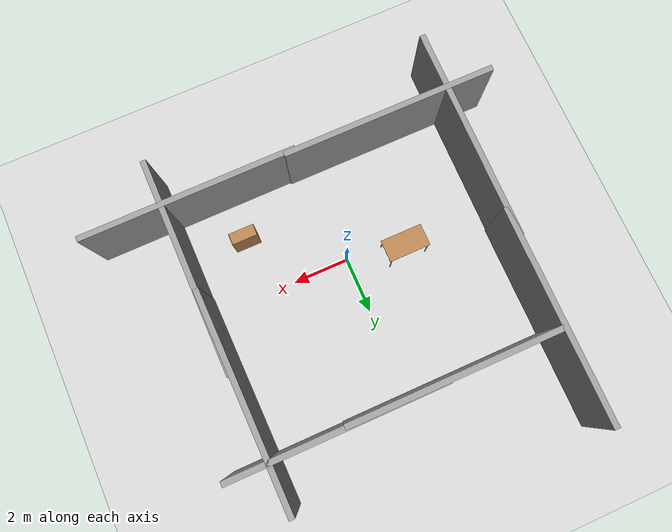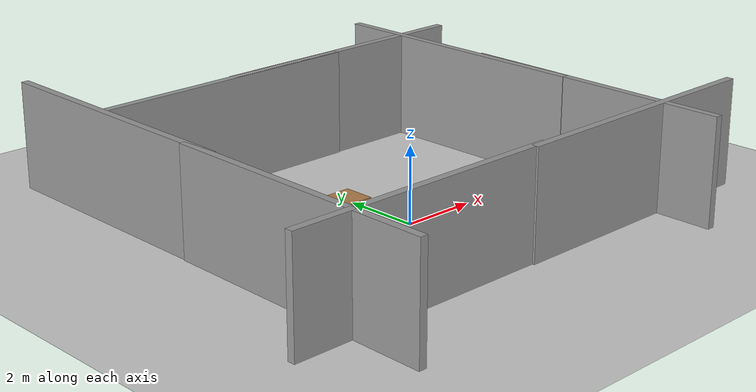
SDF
<sdf version="1.4">
 <world name="default">
  <light name="sun" type="directional">
   <pose>0 0 10 0 -0 0</pose>
   <diffuse>0.8 0.8 0.8 1</diffuse>
   <specular>0.2 0.2 0.2 1</specular>
   <attenuation>
    <range>1000</range>
    <constant>0.9</constant>
    <linear>0.01</linear>
    <quadratic>0.001</quadratic>
   </attenuation>
   <direction>-0.5 0.1 -0.9</direction>
  </light>
  <model name="ground_plane">
   <static>1</static>
   <link name="link">
    <collision name="collision">
     <geometry><plane><normal>0 0 1</normal><size>100 100</size></plane></geometry>
     <surface><friction><ode><mu>100</mu><mu2>50</mu2></ode></friction></surface>
    </collision>
    <visual name="visual">
     <cast_shadows>0</cast_shadows>
     <geometry><plane><normal>0 0 1</normal><size>100 100</size></plane></geometry>
     <material>
      <script><uri>file://media/materials/scripts/gazebo.material</uri><name>Gazebo/Grey</name></script>
     </material>
    </visual>
    <velocity_decay><linear>0</linear><angular>0</angular></velocity_decay>
   </link>
  </model>
  <physics type="ode">
   <max_step_size>0.001</max_step_size>
   <real_time_factor>1</real_time_factor>
   <real_time_update_rate>1000</real_time_update_rate>
   <gravity>0 0 -9.8</gravity>
  </physics>
  <scene><ambient>0.4 0.4 0.4 1</ambient><background>0.7 0.7 0.7 1</background><shadows>1</shadows></scene>
  <spherical_coordinates>
   <surface_model>EARTH_WGS84</surface_model>
   <latitude_deg>0</latitude_deg>
   <longitude_deg>0</longitude_deg>
   <elevation>0</elevation>
   <heading_deg>0</heading_deg>
  </spherical_coordinates>
  <model name="table">
   <static>1</static>
   <link name="link">
    <collision name="surface">
     <pose>0 0 1 0 -0 0</pose>
     <geometry><box><size>1.5 0.8 0.03</size></box></geometry>
    </collision>
    <visual name="visual1">
     <pose>0 0 1 0 -0 0</pose>
     <geometry><box><size>1.5 0.8 0.03</size></box></geometry>
     <material>
      <script><uri>file://media/materials/scripts/gazebo.material</uri><name>Gazebo/Wood</name></script>
     </material>
    </visual>
    <collision name="front_left_leg">
     <pose>0.68 0.38 0.5 0 -0 0</pose>
     <geometry><cylinder><radius>0.02</radius><length>1</length></cylinder></geometry>
    </collision>
    <visual name="front_left_leg">
     <pose>0.68 0.38 0.5 0 -0 0</pose>
     <geometry><cylinder><radius>0.02</radius><length>1</length></cylinder></geometry>
     <material>
      <script><uri>file://media/materials/scripts/gazebo.material</uri><name>Gazebo/Grey</name></script>
     </material>
    </visual>
    <collision name="front_right_leg">
     <pose>0.68 -0.38 0.5 0 -0 0</pose>
     <geometry><cylinder><radius>0.02</radius><length>1</length></cylinder></geometry>
    </collision>
    <visual name="front_right_leg">
     <pose>0.68 -0.38 0.5 0 -0 0</pose>
     <geometry><cylinder><radius>0.02</radius><length>1</length></cylinder></geometry>
     <material>
      <script><uri>file://media/materials/scripts/gazebo.material</uri><name>Gazebo/Grey</name></script>
     </material>
    </visual>
    <collision name="back_right_leg">
     <pose>-0.68 -0.38 0.5 0 -0 0</pose>
     <geometry><cylinder><radius>0.02</radius><length>1</length></cylinder></geometry>
    </collision>
    <visual name="back_right_leg">
     <pose>-0.68 -0.38 0.5 0 -0 0</pose>
     <geometry><cylinder><radius>0.02</radius><length>1</length></cylinder></geometry>
     <material>
      <script><uri>file://media/materials/scripts/gazebo.material</uri><name>Gazebo/Grey</name></script>
     </material>
    </visual>
    <collision name="back_left_leg">
     <pose>-0.68 0.38 0.5 0 -0 0</pose>
     <geometry><cylinder><radius>0.02</radius><length>1</length></cylinder></geometry>
    </collision>
    <visual name="back_left_leg">
     <pose>-0.68 0.38 0.5 0 -0 0</pose>
     <geometry><cylinder><radius>0.02</radius><length>1</length></cylinder></geometry>
     <material>
      <script><uri>file://media/materials/scripts/gazebo.material</uri><name>Gazebo/Grey</name></script>
     </material>
    </visual>
    <velocity_decay><linear>0</linear><angular>0</angular></velocity_decay>
   </link>
   <pose>-1.99383 0.442022 0 0 -0 0</pose>
  </model>
  <model name="grey_wall">
   <static>1</static>
   <link name="link">
    <pose>0 0 1.4 0 -0 0</pose>
    <collision name="collision"><geometry><box><size>7.5 0.2 2.8</size></box></geometry></collision>
    <visual name="visual">
     <cast_shadows>0</cast_shadows>
     <geometry><box><size>7.5 0.2 2.8</size></box></geometry>
     <material>
      <script>
       <uri>model://grey_wall/materials/scripts</uri>
       <uri>model://grey_wall/materials/textures</uri>
       <name>vrc/grey_wall</name>
      </script>
     </material>
    </visual>
    <velocity_decay><linear>0</linear><angular>0</angular></velocity_decay>
   </link>
   <pose>-5.13852 -1.74208 0 0 0 -1.58087</pose>
  </model>
  <model name="grey_wall_0">
   <static>1</static>
   <link name="link">
    <pose>0 0 1.4 0 -0 0</pose>
    <collision name="collision"><geometry><box><size>7.5 0.2 2.8</size></box></geometry></collision>
    <visual name="visual">
     <cast_shadows>0</cast_shadows>
     <geometry><box><size>7.5 0.2 2.8</size></box></geometry>
     <material>
      <script>
       <uri>model://grey_wall/materials/scripts</uri>
       <uri>model://grey_wall/materials/textures</uri>
       <name>vrc/grey_wall</name>
      </script>
     </material>
    </visual>
    <velocity_decay><linear>0</linear><angular>0</angular></velocity_decay>
   </link>
   <pose>4.884 3.18172 0 0 0 -1.55892</pose>
  </model>
  <model name="grey_wall_1">
   <static>1</static>
   <link name="link">
    <pose>0 0 1.4 0 -0 0</pose>
    <collision name="collision"><geometry><box><size>7.5 0.2 2.8</size></box></geometry></collision>
    <visual name="visual">
     <cast_shadows>0</cast_shadows>
     <geometry><box><size>7.5 0.2 2.8</size></box></geometry>
     <material>
      <script>
       <uri>model://grey_wall/materials/scripts</uri>
       <uri>model://grey_wall/materials/textures</uri>
       <name>vrc/grey_wall</name>
      </script>
     </material>
    </visual>
    <velocity_decay><linear>0</linear><angular>0</angular></velocity_decay>
   </link>
   <pose>-3.05779 -3.49779 0 0 -0 0</pose>
  </model>
  <model name="grey_wall_2">
   <static>1</static>
   <link name="link">
    <pose>0 0 1.4 0 -0 0</pose>
    <collision name="collision"><geometry><box><size>7.5 0.2 2.8</size></box></geometry></collision>
    <visual name="visual">
     <cast_shadows>0</cast_shadows>
     <geometry><box><size>7.5 0.2 2.8</size></box></geometry>
     <material>
      <script>
       <uri>model://grey_wall/materials/scripts</uri>
       <uri>model://grey_wall/materials/textures</uri>
       <name>vrc/grey_wall</name>
      </script>
     </material>
    </visual>
    <velocity_decay><linear>0</linear><angular>0</angular></velocity_decay>
   </link>
   <pose>4.02323 -3.54433 0 0 0 -3.13954</pose>
  </model>
  <model name="bookshelf">
   <static>1</static>
   <link name="link">
    <inertial><mass>1</mass></inertial>
    <collision name="back">
     <pose>0 0.005 0.6 0 -0 0</pose>
     <geometry><box><size>0.9 0.01 1.2</size></box></geometry>
    </collision>
    <visual name="visual1">
     <pose>0 0.005 0.6 0 -0 0</pose>
     <geometry><box><size>0.9 0.01 1.2</size></box></geometry>
     <material>
      <script><uri>file://media/materials/scripts/gazebo.material</uri><name>Gazebo/Wood</name></script>
     </material>
    </visual>
    <collision name="left_side">
     <pose>0.45 -0.195 0.6 0 -0 0</pose>
     <geometry><box><size>0.02 0.4 1.2</size></box></geometry>
    </collision>
    <visual name="visual2">
     <pose>0.45 -0.195 0.6 0 -0 0</pose>
     <geometry><box><size>0.02 0.4 1.2</size></box></geometry>
     <material>
      <script><uri>file://media/materials/scripts/gazebo.material</uri><name>Gazebo/Wood</name></script>
     </material>
    </visual>
    <collision name="right_side">
     <pose>-0.45 -0.195 0.6 0 -0 0</pose>
     <geometry><box><size>0.02 0.4 1.2</size></box></geometry>
    </collision>
    <visual name="visual3">
     <pose>-0.45 -0.195 0.6 0 -0 0</pose>
     <geometry><box><size>0.02 0.4 1.2</size></box></geometry>
     <material>
      <script><uri>file://media/materials/scripts/gazebo.material</uri><name>Gazebo/Wood</name></script>
     </material>
    </visual>
    <collision name="bottom">
     <pose>0 -0.195 0.03 0 -0 0</pose>
     <geometry><box><size>0.88 0.4 0.06</size></box></geometry>
    </collision>
    <visual name="visual4">
     <pose>0 -0.195 0.03 0 -0 0</pose>
     <geometry><box><size>0.88 0.4 0.06</size></box></geometry>
     <material>
      <script><uri>file://media/materials/scripts/gazebo.material</uri><name>Gazebo/Wood</name></script>
     </material>
    </visual>
    <collision name="top">
     <pose>0 -0.195 1.19 0 -0 0</pose>
     <geometry><box><size>0.88 0.4 0.02</size></box></geometry>
    </collision>
    <visual name="visual5">
     <pose>0 -0.195 1.19 0 -0 0</pose>
     <geometry><box><size>0.88 0.4 0.02</size></box></geometry>
     <material>
      <script><uri>file://media/materials/scripts/gazebo.material</uri><name>Gazebo/Wood</name></script>
     </material>
    </visual>
    <collision name="low_shelf">
     <pose>0 -0.195 0.43 0 -0 0</pose>
     <geometry><box><size>0.88 0.4 0.02</size></box></geometry>
    </collision>
    <visual name="visual6">
     <pose>0 -0.195 0.43 0 -0 0</pose>
     <geometry><box><size>0.88 0.4 0.02</size></box></geometry>
     <material>
      <script><uri>file://media/materials/scripts/gazebo.material</uri><name>Gazebo/Wood</name></script>
     </material>
    </visual>
    <collision name="high_shelf">
     <pose>0 -0.195 0.8 0 -0 0</pose>
     <geometry><box><size>0.88 0.4 0.02</size></box></geometry>
    </collision>
    <visual name="visual7">
     <pose>0 -0.195 0.8 0 -0 0</pose>
     <geometry><box><size>0.88 0.4 0.02</size></box></geometry>
     <material>
      <script><uri>file://media/materials/scripts/gazebo.material</uri><name>Gazebo/Wood</name></script>
     </material>
    </visual>
    <velocity_decay><linear>0</linear><angular>0</angular></velocity_decay>
   </link>
   <pose>2.98305 -1.83801 0 0 -0 0</pose>
  </model>
  <model name="grey_wall_3">
   <static>1</static>
   <link name="link">
    <pose>0 0 1.4 0 -0 0</pose>
    <collision name="collision"><geometry><box><size>7.5 0.2 2.8</size></box></geometry></collision>
    <visual name="visual">
     <cast_shadows>0</cast_shadows>
     <geometry><box><size>7.5 0.2 2.8</size></box></geometry>
     <material>
      <script>
       <uri>model://grey_wall/materials/scripts</uri>
       <uri>model://grey_wall/materials/textures</uri>
       <name>vrc/grey_wall</name>
      </script>
     </material>
    </visual>
    <velocity_decay><linear>0</linear><angular>0</angular></velocity_decay>
   </link>
   <pose>4.94878 -1.39258 0 0 0 -1.57076</pose>
  </model>
  <model name="grey_wall_4">
   <static>1</static>
   <link name="link">
    <pose>0 0 1.4 0 -0 0</pose>
    <collision name="collision"><geometry><box><size>7.5 0.2 2.8</size></box></geometry></collision>
    <visual name="visual">
     <cast_shadows>0</cast_shadows>
     <geometry><box><size>7.5 0.2 2.8</size></box></geometry>
     <material>
      <script>
       <uri>model://grey_wall/materials/scripts</uri>
       <uri>model://grey_wall/materials/textures</uri>
       <name>vrc/grey_wall</name>
      </script>
     </material>
    </visual>
    <velocity_decay><linear>0</linear><angular>0</angular></velocity_decay>
   </link>
   <pose>2.61701 5.17909 0 0 -0 0</pose>
  </model>
  <model name="grey_wall_5">
   <static>1</static>
   <link name="link">
    <pose>0 0 1.4 0 -0 0</pose>
    <collision name="collision"><geometry><box><size>7.5 0.2 2.8</size></box></geometry></collision>
    <visual name="visual">
     <cast_shadows>0</cast_shadows>
     <geometry><box><size>7.5 0.2 2.8</size></box></geometry>
     <material>
      <script>
       <uri>model://grey_wall/materials/scripts</uri>
       <uri>model://grey_wall/materials/textures</uri>
       <name>vrc/grey_wall</name>
      </script>
     </material>
    </visual>
    <velocity_decay><linear>0</linear><angular>0</angular></velocity_decay>
   </link>
   <pose>-1.3678 5.1498 0 0 -0 0</pose>
  </model>
  <model name="grey_wall_6">
   <static>1</static>
   <link name="link">
    <pose>0 0 1.4 0 -0 0</pose>
    <collision name="collision"><geometry><box><size>7.5 0.2 2.8</size></box></geometry></collision>
    <visual name="visual">
     <cast_shadows>0</cast_shadows>
     <geometry><box><size>7.5 0.2 2.8</size></box></geometry>
     <material>
      <script>
       <uri>model://grey_wall/materials/scripts</uri>
       <uri>model://grey_wall/materials/textures</uri>
       <name>vrc/grey_wall</name>
      </script>
     </material>
    </visual>
    <velocity_decay><linear>0</linear><angular>0</angular></velocity_decay>
   </link>
   <pose>-5.06776 4.73469 0 0 0 -1.57356</pose>
  </model>
 </world>
</sdf>
